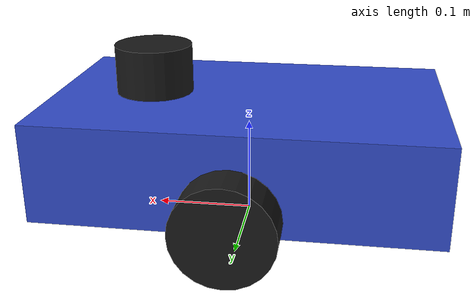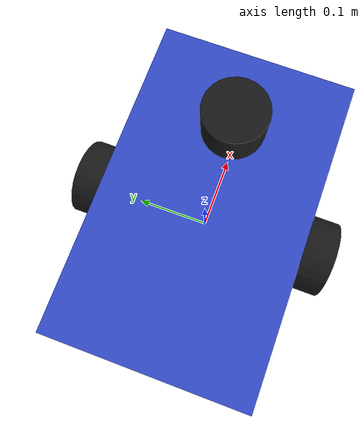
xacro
<?xml version="1.0"?>
<robot name="diffbot" xmlns:xacro="http://www.ros.org/wiki/xacro">

  <!-- ===== Dimensions (change here, everything updates) ===== -->
  <xacro:property name="chassis_length" value="0.40"/>
  <xacro:property name="chassis_width"  value="0.25"/>
  <xacro:property name="chassis_height" value="0.10"/>
  <xacro:property name="chassis_mass"   value="5.0"/>
  <xacro:property name="chassis_z"      value="0.03"/>

  <xacro:property name="wheel_radius"   value="0.05"/>
  <xacro:property name="wheel_width"    value="0.04"/>
  <xacro:property name="wheel_mass"     value="0.5"/>
  <xacro:property name="wheel_y"        value="0.15"/>

  <xacro:property name="caster_radius"  value="0.025"/>
  <xacro:property name="caster_mass"    value="0.1"/>

  <!-- ===== Colors ===== -->
  <material name="blue"><color rgba="0.2 0.3 0.8 1.0"/></material>
  <material name="black"><color rgba="0.1 0.1 0.1 1.0"/></material>
  <material name="grey"><color rgba="0.6 0.6 0.6 1.0"/></material>

  <!-- ===== Inertia macros (standard physics formulas) ===== -->
  <xacro:macro name="box_inertia" params="m x y z">
    <inertia ixx="${m/12.0*(y*y+z*z)}" ixy="0" ixz="0"
             iyy="${m/12.0*(x*x+z*z)}" iyz="0"
             izz="${m/12.0*(x*x+y*y)}"/>
  </xacro:macro>

  <xacro:macro name="cylinder_inertia" params="m r h">
    <inertia ixx="${m/12.0*(3*r*r+h*h)}" ixy="0" ixz="0"
             iyy="${m/12.0*(3*r*r+h*h)}" iyz="0"
             izz="${m*r*r/2.0}"/>
  </xacro:macro>

  <xacro:macro name="sphere_inertia" params="m r">
    <inertia ixx="${2.0*m*r*r/5.0}" ixy="0" ixz="0"
             iyy="${2.0*m*r*r/5.0}" iyz="0"
             izz="${2.0*m*r*r/5.0}"/>
  </xacro:macro>

<!-- ===== Links ===== -->
  <link name="base_footprint"/>

  <link name="base_link">
    <visual>
      <origin xyz="0 0 ${chassis_z}"/>
      <geometry><box size="${chassis_length} ${chassis_width} ${chassis_height}"/></geometry>
      <material name="blue"/>
    </visual>
    <collision>
      <origin xyz="0 0 ${chassis_z}"/>
      <geometry><box size="${chassis_length} ${chassis_width} ${chassis_height}"/></geometry>
    </collision>
    <inertial>
      <origin xyz="0 0 ${chassis_z}"/>
      <mass value="${chassis_mass}"/>
      <xacro:box_inertia m="${chassis_mass}" x="${chassis_length}" y="${chassis_width}" z="${chassis_height}"/>
    </inertial>
  </link>

  <joint name="base_footprint_joint" type="fixed">
    <parent link="base_footprint"/>
    <child link="base_link"/>
    <origin xyz="0 0 ${wheel_radius}"/>
  </joint>

<!-- ===== Wheel macro: used twice (left and right) ===== -->
  <xacro:macro name="wheel" params="prefix y_pos">
    <link name="${prefix}_wheel">
      <visual>
        <geometry><cylinder radius="${wheel_radius}" length="${wheel_width}"/></geometry>
        <material name="black"/>
      </visual>
      <collision>
        <geometry><cylinder radius="${wheel_radius}" length="${wheel_width}"/></geometry>
      </collision>
      <inertial>
        <mass value="${wheel_mass}"/>
        <xacro:cylinder_inertia m="${wheel_mass}" r="${wheel_radius}" h="${wheel_width}"/>
      </inertial>
    </link>

    <joint name="${prefix}_wheel_joint" type="continuous">
      <parent link="base_link"/>
      <child link="${prefix}_wheel"/>
      <origin xyz="0 ${y_pos} 0" rpy="${-pi/2} 0 0"/>
      <axis xyz="0 0 1"/>
    </joint>
  </xacro:macro>

  <xacro:wheel prefix="left"  y_pos="${wheel_y}"/>
  <xacro:wheel prefix="right" y_pos="${-wheel_y}"/>

  <!-- ===== Caster wheel (passive ball at the front) ===== -->
  <link name="caster_link">
    <visual>
      <geometry><sphere radius="${caster_radius}"/></geometry>
      <material name="grey"/>
    </visual>
    <collision>
      <geometry><sphere radius="${caster_radius}"/></geometry>
    </collision>
    <inertial>
      <mass value="${caster_mass}"/>
      <xacro:sphere_inertia m="${caster_mass}" r="${caster_radius}"/>
    </inertial>
  </link>

  <joint name="caster_joint" type="fixed">
    <parent link="base_link"/>
    <child link="caster_link"/>
    <origin xyz="0.15 0 ${-caster_radius}"/>
  </joint>

<!-- ===== Lidar (mounted on top, front) ===== -->
  <link name="lidar_link">
    <visual>
      <geometry><cylinder radius="0.04" length="0.05"/></geometry>
      <material name="black"/>
    </visual>
    <collision>
      <geometry><cylinder radius="0.04" length="0.05"/></geometry>
    </collision>
    <inertial>
      <mass value="0.1"/>
      <xacro:cylinder_inertia m="0.1" r="0.04" h="0.05"/>
    </inertial>
  </link>

  <joint name="lidar_joint" type="fixed">
    <parent link="base_link"/>
    <child link="lidar_link"/>
    <origin xyz="0.10 0 0.105"/>
  </joint>

  <!-- ===== IMU (inside the chassis, at its center) ===== -->
  <link name="imu_link">
    <inertial>
      <mass value="0.01"/>
      <inertia ixx="1e-6" ixy="0" ixz="0" iyy="1e-6" iyz="0" izz="1e-6"/>
    </inertial>
  </link>

  <joint name="imu_joint" type="fixed">
    <parent link="base_link"/>
    <child link="imu_link"/>
    <origin xyz="0 0 ${chassis_z}"/>
  </joint>

 <!-- ===== Gazebo: friction ===== -->
  <gazebo reference="left_wheel">
    <mu1>1.0</mu1>
    <mu2>1.0</mu2>
  </gazebo>
  <gazebo reference="right_wheel">
    <mu1>1.0</mu1>
    <mu2>1.0</mu2>
  </gazebo>
  <gazebo reference="caster_link">
    <mu1>0.0</mu1>
    <mu2>0.0</mu2>
  </gazebo>

  <!-- ===== Gazebo: lidar ===== -->
  <gazebo reference="lidar_link">
    <sensor name="lidar" type="gpu_lidar">
      <topic>scan</topic>
      <gz_frame_id>lidar_link</gz_frame_id>
      <update_rate>10</update_rate>
      <always_on>true</always_on>
      <visualize>false</visualize>
      <lidar>
        <scan>
          <horizontal>
            <samples>360</samples>
            <resolution>1</resolution>
            <min_angle>-3.14159</min_angle>
            <max_angle>3.14159</max_angle>
          </horizontal>
        </scan>
        <range>
          <min>0.12</min>
          <max>10.0</max>
          <resolution>0.01</resolution>
        </range>
      </lidar>
    </sensor>
  </gazebo>

  <!-- ===== Gazebo: IMU ===== -->
  <gazebo reference="imu_link">
    <sensor name="imu" type="imu">
      <topic>imu</topic>
      <gz_frame_id>imu_link</gz_frame_id>
      <update_rate>100</update_rate>
      <always_on>true</always_on>
      <visualize>false</visualize>
    </sensor>
  </gazebo>

  <!-- ===== Gazebo: plugins (the "motor driver" and joint reporting) ===== -->
  <gazebo>
    <plugin filename="gz-sim-diff-drive-system" name="gz::sim::systems::DiffDrive">
      <left_joint>left_wheel_joint</left_joint>
      <right_joint>right_wheel_joint</right_joint>
      <wheel_separation>${2*wheel_y}</wheel_separation>
      <wheel_radius>${wheel_radius}</wheel_radius>
      <topic>cmd_vel</topic>
      <odom_topic>odom</odom_topic>
      <tf_topic>tf</tf_topic>
      <frame_id>odom</frame_id>
      <child_frame_id>base_footprint</child_frame_id>
      <odom_publish_frequency>50</odom_publish_frequency>
      <max_linear_acceleration>1.0</max_linear_acceleration>
      <max_angular_acceleration>2.0</max_angular_acceleration>
    </plugin>

    <plugin filename="gz-sim-joint-state-publisher-system" name="gz::sim::systems::JointStatePublisher">
      <topic>joint_states</topic>
    </plugin>
  </gazebo>

</robot>
